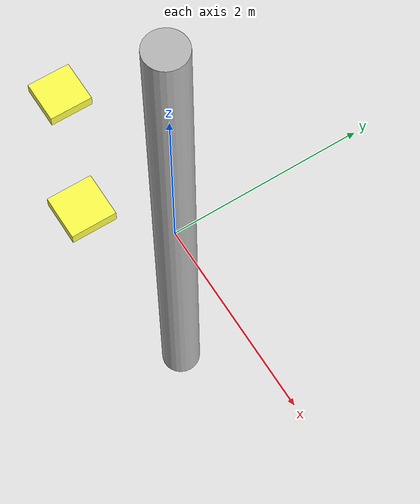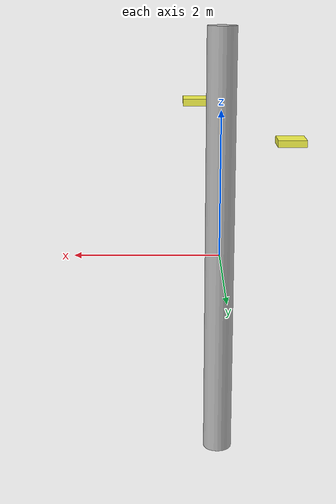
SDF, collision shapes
<?xml version='1.0'?>
<sdf version='1.5'>
  <model name="grape_tree">
     <static>true</static>
    <link name="body">
      <pose>0 0 0.1 0 0 0</pose>
      <collision name="collision">
        <geometry>
          <cylinder>
            <radius>0.20</radius>
            <length>6.0</length>
          </cylinder>
        </geometry>
      </collision>
      <visual name="visual">
        <geometry>
        <mesh>
          <uri>/home/samleong/gazebo_models/grape_tree/model.dae</uri>
	 <scale>4.5 4.5 4.5</scale>
	<pose>0 0 0 0 0 1.57</pose>
        </mesh>
      </geometry>
      </visual>
    </link>
    <link name="vine1">
        <pose>-1.0 -0.5 1.5 0 0 0</pose>
        <collision name="collision">
          <geometry>
        <box>
          <size>0.4 .4 .1</size>
        </box>
          </geometry>
        </collision>
        <visual name="visual">
          <geometry>
        <box>
          <size>0.1 0.1 .1</size>
        </box>
          </geometry>
 	<material>
          <ambient>0 0 0 1</ambient>
          <diffuse>1 1 0.3 1</diffuse>
          <specular>0 0 0 0</specular>
          <emissive>0 0 0 1</emissive>
        </material>
        </visual>
      </link>
	<link name="vine2">
        <pose>0.3 -1.0 2.0 0 0 0</pose>
        <collision name="collision">
          <geometry>
        <box>
          <size>0.4 .4 .1</size>
        </box>
          </geometry>
        </collision>
        <visual name="visual">
          <geometry>
        <box>
          <size>0.1 0.1 .1</size>
        </box>
          </geometry>
 	<material>
          <ambient>0 0 0 1</ambient>
          <diffuse>1 1 0.3 1</diffuse>
          <specular>0 0 0 0</specular>
          <emissive>0 0 0 1</emissive>
        </material>
        </visual>
      </link>
  </model>
 </sdf>
